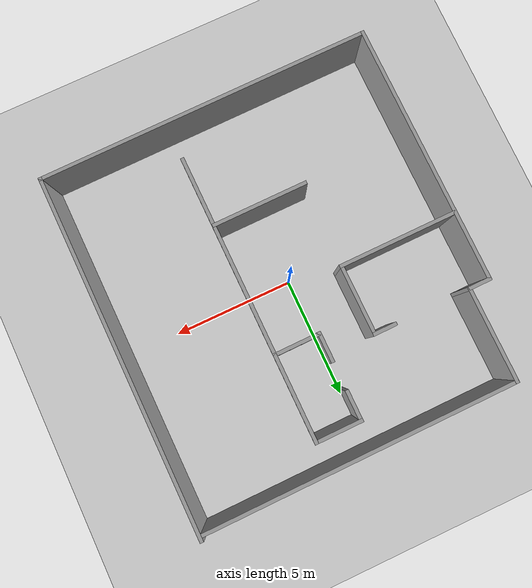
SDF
<sdf version="1.7">
 <world name="default">
  <light name="sun" type="directional">
   <pose>0 0 10 0 -0 0</pose>
   <diffuse>0.8 0.8 0.8 1</diffuse>
   <specular>0.2 0.2 0.2 1</specular>
   <attenuation>
    <range>1000</range>
    <constant>0.9</constant>
    <linear>0.01</linear>
    <quadratic>0.001</quadratic>
   </attenuation>
   <direction>-0.5 0.1 -0.9</direction>
   <spot><inner_angle>0</inner_angle><outer_angle>0</outer_angle><falloff>0</falloff></spot>
  </light>
  <model name="ground_plane">
   <static>1</static>
   <link name="link">
    <collision name="collision">
     <geometry><plane><normal>0 0 1</normal><size>100 100</size></plane></geometry>
     <surface>
      <contact><collide_bitmask>65535</collide_bitmask></contact>
      <friction><ode><mu>100</mu><mu2>50</mu2></ode></friction>
     </surface>
    </collision>
    <visual name="visual">
     <cast_shadows>0</cast_shadows>
     <geometry><plane><normal>0 0 1</normal><size>100 100</size></plane></geometry>
     <material>
      <script><uri>file://media/materials/scripts/gazebo.material</uri><name>Gazebo/Grey</name></script>
     </material>
    </visual>
   </link>
  </model>
  <gravity>0 0 -9.8</gravity>
  <magnetic_field>6e-06 2.3e-05 -4.2e-05</magnetic_field>
  <atmosphere type="adiabatic"/>
  <physics type="ode">
   <max_step_size>0.001</max_step_size>
   <real_time_factor>1</real_time_factor>
   <real_time_update_rate>1000</real_time_update_rate>
  </physics>
  <scene><ambient>0.4 0.4 0.4 1</ambient><background>0.7 0.7 0.7 1</background><shadows>1</shadows></scene>
  <spherical_coordinates>
   <surface_model>EARTH_WGS84</surface_model>
   <latitude_deg>0</latitude_deg>
   <longitude_deg>0</longitude_deg>
   <elevation>0</elevation>
   <heading_deg>0</heading_deg>
  </spherical_coordinates>
  <model name="house">
   <link name="Wall_10">
    <pose>-3.425 -6.5 0 0 -0 1.5708</pose>
    <visual name="Wall_10_Visual">
     <pose>0 0 1.25 0 -0 0</pose>
     <geometry><box><size>1 0.15 2.5</size></box></geometry>
     <material>
      <script><uri>file://media/materials/scripts/gazebo.material</uri><name>Gazebo/Grey</name></script>
      <ambient>1 1 1 1</ambient>
      <shader type="pixel"/>
     </material>
     <meta><layer>0</layer></meta>
    </visual>
    <collision name="Wall_10_Collision">
     <pose>0 0 1.25 0 -0 0</pose>
     <geometry><box><size>1 0.15 2.5</size></box></geometry>
     <surface>
      <friction>
       <ode><mu>1</mu><mu2>1</mu2><fdir1>0 0 0</fdir1><slip1>0</slip1><slip2>0</slip2></ode>
       <torsional>
        <coefficient>1</coefficient>
        <patch_radius>0</patch_radius>
        <surface_radius>0</surface_radius>
        <use_patch_radius>1</use_patch_radius>
        <ode><slip>0</slip></ode>
       </torsional>
      </friction>
      <bounce><restitution_coefficient>0</restitution_coefficient><threshold>1e+06</threshold></bounce>
      <contact>
       <collide_without_contact>0</collide_without_contact>
       <collide_without_contact_bitmask>1</collide_without_contact_bitmask>
       <collide_bitmask>1</collide_bitmask>
       <ode>
        <soft_cfm>0</soft_cfm>
        <soft_erp>0.2</soft_erp>
        <kp>1e+13</kp>
        <kd>1</kd>
        <max_vel>0.01</max_vel>
        <min_depth>0</min_depth>
       </ode>
       <bullet>
        <split_impulse>1</split_impulse>
        <split_impulse_penetration_threshold>-0.01</split_impulse_penetration_threshold>
        <soft_cfm>0</soft_cfm>
        <soft_erp>0.2</soft_erp>
        <kp>1e+13</kp>
        <kd>1</kd>
       </bullet>
      </contact>
     </surface>
    </collision>
   </link>
   <link name="Wall_11">
    <pose>-5.35 -6.075 0 0 -0 3.14159</pose>
    <visual name="Wall_11_Visual">
     <pose>0 0 1.25 0 -0 0</pose>
     <geometry><box><size>4 0.15 2.5</size></box></geometry>
     <material>
      <script><uri>file://media/materials/scripts/gazebo.material</uri><name>Gazebo/Grey</name></script>
      <ambient>1 1 1 1</ambient>
      <shader type="pixel"/>
     </material>
     <meta><layer>0</layer></meta>
    </visual>
    <collision name="Wall_11_Collision">
     <pose>0 0 1.25 0 -0 0</pose>
     <geometry><box><size>4 0.15 2.5</size></box></geometry>
     <surface>
      <friction>
       <ode><mu>1</mu><mu2>1</mu2><fdir1>0 0 0</fdir1><slip1>0</slip1><slip2>0</slip2></ode>
       <torsional>
        <coefficient>1</coefficient>
        <patch_radius>0</patch_radius>
        <surface_radius>0</surface_radius>
        <use_patch_radius>1</use_patch_radius>
        <ode><slip>0</slip></ode>
       </torsional>
      </friction>
      <bounce><restitution_coefficient>0</restitution_coefficient><threshold>1e+06</threshold></bounce>
      <contact>
       <collide_without_contact>0</collide_without_contact>
       <collide_without_contact_bitmask>1</collide_without_contact_bitmask>
       <collide_bitmask>1</collide_bitmask>
       <ode>
        <soft_cfm>0</soft_cfm>
        <soft_erp>0.2</soft_erp>
        <kp>1e+13</kp>
        <kd>1</kd>
        <max_vel>0.01</max_vel>
        <min_depth>0</min_depth>
       </ode>
       <bullet>
        <split_impulse>1</split_impulse>
        <split_impulse_penetration_threshold>-0.01</split_impulse_penetration_threshold>
        <soft_cfm>0</soft_cfm>
        <soft_erp>0.2</soft_erp>
        <kp>1e+13</kp>
        <kd>1</kd>
       </bullet>
      </contact>
     </surface>
    </collision>
   </link>
   <link name="Wall_12">
    <pose>-7.275 0.35 0 0 -0 1.5708</pose>
    <visual name="Wall_12_Visual">
     <pose>0 0 1.25 0 -0 0</pose>
     <geometry><box><size>13 0.15 2.5</size></box></geometry>
     <material>
      <script><uri>file://media/materials/scripts/gazebo.material</uri><name>Gazebo/Grey</name></script>
      <ambient>1 1 1 1</ambient>
      <shader type="pixel"/>
     </material>
     <meta><layer>0</layer></meta>
    </visual>
    <collision name="Wall_12_Collision">
     <pose>0 0 1.25 0 -0 0</pose>
     <geometry><box><size>13 0.15 2.5</size></box></geometry>
     <surface>
      <friction>
       <ode><mu>1</mu><mu2>1</mu2><fdir1>0 0 0</fdir1><slip1>0</slip1><slip2>0</slip2></ode>
       <torsional>
        <coefficient>1</coefficient>
        <patch_radius>0</patch_radius>
        <surface_radius>0</surface_radius>
        <use_patch_radius>1</use_patch_radius>
        <ode><slip>0</slip></ode>
       </torsional>
      </friction>
      <bounce><restitution_coefficient>0</restitution_coefficient><threshold>1e+06</threshold></bounce>
      <contact>
       <collide_without_contact>0</collide_without_contact>
       <collide_without_contact_bitmask>1</collide_without_contact_bitmask>
       <collide_bitmask>1</collide_bitmask>
       <ode>
        <soft_cfm>0</soft_cfm>
        <soft_erp>0.2</soft_erp>
        <kp>1e+13</kp>
        <kd>1</kd>
        <max_vel>0.01</max_vel>
        <min_depth>0</min_depth>
       </ode>
       <bullet>
        <split_impulse>1</split_impulse>
        <split_impulse_penetration_threshold>-0.01</split_impulse_penetration_threshold>
        <soft_cfm>0</soft_cfm>
        <soft_erp>0.2</soft_erp>
        <kp>1e+13</kp>
        <kd>1</kd>
       </bullet>
      </contact>
     </surface>
    </collision>
   </link>
   <link name="Wall_15">
    <pose>-0.575 -4.5 0 0 -0 1.5708</pose>
    <visual name="Wall_15_Visual">
     <pose>0 0 1.25 0 -0 0</pose>
     <geometry><box><size>5 0.15 2.5</size></box></geometry>
     <material>
      <script><uri>file://media/materials/scripts/gazebo.material</uri><name>Gazebo/Grey</name></script>
      <ambient>1 1 1 1</ambient>
      <shader type="pixel"/>
     </material>
     <meta><layer>0</layer></meta>
    </visual>
    <collision name="Wall_15_Collision">
     <pose>0 0 1.25 0 -0 0</pose>
     <geometry><box><size>5 0.15 2.5</size></box></geometry>
     <surface>
      <friction>
       <ode><mu>1</mu><mu2>1</mu2><fdir1>0 0 0</fdir1><slip1>0</slip1><slip2>0</slip2></ode>
       <torsional>
        <coefficient>1</coefficient>
        <patch_radius>0</patch_radius>
        <surface_radius>0</surface_radius>
        <use_patch_radius>1</use_patch_radius>
        <ode><slip>0</slip></ode>
       </torsional>
      </friction>
      <bounce><restitution_coefficient>0</restitution_coefficient><threshold>1e+06</threshold></bounce>
      <contact>
       <collide_without_contact>0</collide_without_contact>
       <collide_without_contact_bitmask>1</collide_without_contact_bitmask>
       <collide_bitmask>1</collide_bitmask>
       <ode>
        <soft_cfm>0</soft_cfm>
        <soft_erp>0.2</soft_erp>
        <kp>1e+13</kp>
        <kd>1</kd>
        <max_vel>0.01</max_vel>
        <min_depth>0</min_depth>
       </ode>
       <bullet>
        <split_impulse>1</split_impulse>
        <split_impulse_penetration_threshold>-0.01</split_impulse_penetration_threshold>
        <soft_cfm>0</soft_cfm>
        <soft_erp>0.2</soft_erp>
        <kp>1e+13</kp>
        <kd>1</kd>
       </bullet>
      </contact>
     </surface>
    </collision>
   </link>
   <link name="Wall_18">
    <pose>-2 -2.075 0 0 -0 3.14159</pose>
    <visual name="Wall_18_Visual">
     <pose>0 0 1.25 0 -0 0</pose>
     <geometry><box><size>3 0.15 2.5</size></box></geometry>
     <material>
      <script><uri>file://media/materials/scripts/gazebo.material</uri><name>Gazebo/Grey</name></script>
      <ambient>1 1 1 1</ambient>
      <shader type="pixel"/>
     </material>
     <meta><layer>0</layer></meta>
    </visual>
    <collision name="Wall_18_Collision">
     <pose>0 0 1.25 0 -0 0</pose>
     <geometry><box><size>3 0.15 2.5</size></box></geometry>
     <surface>
      <friction>
       <ode><mu>1</mu><mu2>1</mu2><fdir1>0 0 0</fdir1><slip1>0</slip1><slip2>0</slip2></ode>
       <torsional>
        <coefficient>1</coefficient>
        <patch_radius>0</patch_radius>
        <surface_radius>0</surface_radius>
        <use_patch_radius>1</use_patch_radius>
        <ode><slip>0</slip></ode>
       </torsional>
      </friction>
      <bounce><restitution_coefficient>0</restitution_coefficient><threshold>1e+06</threshold></bounce>
      <contact>
       <collide_without_contact>0</collide_without_contact>
       <collide_without_contact_bitmask>1</collide_without_contact_bitmask>
       <collide_bitmask>1</collide_bitmask>
       <ode>
        <soft_cfm>0</soft_cfm>
        <soft_erp>0.2</soft_erp>
        <kp>1e+13</kp>
        <kd>1</kd>
        <max_vel>0.01</max_vel>
        <min_depth>0</min_depth>
       </ode>
       <bullet>
        <split_impulse>1</split_impulse>
        <split_impulse_penetration_threshold>-0.01</split_impulse_penetration_threshold>
        <soft_cfm>0</soft_cfm>
        <soft_erp>0.2</soft_erp>
        <kp>1e+13</kp>
        <kd>1</kd>
       </bullet>
      </contact>
     </surface>
    </collision>
   </link>
   <link name="Wall_19">
    <pose>-3.425 -2.5 0 0 0 -1.5708</pose>
    <visual name="Wall_19_Visual">
     <pose>0 0 1.25 0 -0 0</pose>
     <geometry><box><size>1 0.15 2.5</size></box></geometry>
     <material>
      <script><uri>file://media/materials/scripts/gazebo.material</uri><name>Gazebo/Grey</name></script>
      <ambient>1 1 1 1</ambient>
      <shader type="pixel"/>
     </material>
     <meta><layer>0</layer></meta>
    </visual>
    <collision name="Wall_19_Collision">
     <pose>0 0 1.25 0 -0 0</pose>
     <geometry><box><size>1 0.15 2.5</size></box></geometry>
     <surface>
      <friction>
       <ode><mu>1</mu><mu2>1</mu2><fdir1>0 0 0</fdir1><slip1>0</slip1><slip2>0</slip2></ode>
       <torsional>
        <coefficient>1</coefficient>
        <patch_radius>0</patch_radius>
        <surface_radius>0</surface_radius>
        <use_patch_radius>1</use_patch_radius>
        <ode><slip>0</slip></ode>
       </torsional>
      </friction>
      <bounce><restitution_coefficient>0</restitution_coefficient><threshold>1e+06</threshold></bounce>
      <contact>
       <collide_without_contact>0</collide_without_contact>
       <collide_without_contact_bitmask>1</collide_without_contact_bitmask>
       <collide_bitmask>1</collide_bitmask>
       <ode>
        <soft_cfm>0</soft_cfm>
        <soft_erp>0.2</soft_erp>
        <kp>1e+13</kp>
        <kd>1</kd>
        <max_vel>0.01</max_vel>
        <min_depth>0</min_depth>
       </ode>
       <bullet>
        <split_impulse>1</split_impulse>
        <split_impulse_penetration_threshold>-0.01</split_impulse_penetration_threshold>
        <soft_cfm>0</soft_cfm>
        <soft_erp>0.2</soft_erp>
        <kp>1e+13</kp>
        <kd>1</kd>
       </bullet>
      </contact>
     </surface>
    </collision>
   </link>
   <link name="Wall_2">
    <pose>0 6.925 0 0 -0 0</pose>
    <visual name="Wall_2_Visual">
     <pose>0 0 1.25 0 -0 0</pose>
     <geometry><box><size>15 0.15 2.5</size></box></geometry>
     <material>
      <script><uri>file://media/materials/scripts/gazebo.material</uri><name>Gazebo/Grey</name></script>
      <ambient>1 1 1 1</ambient>
      <shader type="pixel"/>
     </material>
     <meta><layer>0</layer></meta>
    </visual>
    <collision name="Wall_2_Collision">
     <pose>0 0 1.25 0 -0 0</pose>
     <geometry><box><size>15 0.15 2.5</size></box></geometry>
     <surface>
      <friction>
       <ode><mu>1</mu><mu2>1</mu2><fdir1>0 0 0</fdir1><slip1>0</slip1><slip2>0</slip2></ode>
       <torsional>
        <coefficient>1</coefficient>
        <patch_radius>0</patch_radius>
        <surface_radius>0</surface_radius>
        <use_patch_radius>1</use_patch_radius>
        <ode><slip>0</slip></ode>
       </torsional>
      </friction>
      <bounce><restitution_coefficient>0</restitution_coefficient><threshold>1e+06</threshold></bounce>
      <contact>
       <collide_without_contact>0</collide_without_contact>
       <collide_without_contact_bitmask>1</collide_without_contact_bitmask>
       <collide_bitmask>1</collide_bitmask>
       <ode>
        <soft_cfm>0</soft_cfm>
        <soft_erp>0.2</soft_erp>
        <kp>1e+13</kp>
        <kd>1</kd>
        <max_vel>0.01</max_vel>
        <min_depth>0</min_depth>
       </ode>
       <bullet>
        <split_impulse>1</split_impulse>
        <split_impulse_penetration_threshold>-0.01</split_impulse_penetration_threshold>
        <soft_cfm>0</soft_cfm>
        <soft_erp>0.2</soft_erp>
        <kp>1e+13</kp>
        <kd>1</kd>
       </bullet>
      </contact>
     </surface>
    </collision>
   </link>
   <link name="Wall_23">
    <pose>-0.153566 1.64603 0 0 -0 0</pose>
    <visual name="Wall_23_Visual">
     <pose>0 0 1.25 0 -0 0</pose>
     <geometry><box><size>12 0.15 2.5</size></box></geometry>
     <material>
      <script><uri>file://media/materials/scripts/gazebo.material</uri><name>Gazebo/Grey</name></script>
      <ambient>1 1 1 1</ambient>
      <shader type="pixel"/>
     </material>
     <meta><layer>0</layer></meta>
    </visual>
    <collision name="Wall_23_Collision">
     <pose>0 0 1.25 0 -0 0</pose>
     <geometry><box><size>12 0.15 2.5</size></box></geometry>
     <surface>
      <friction>
       <ode><mu>1</mu><mu2>1</mu2><fdir1>0 0 0</fdir1><slip1>0</slip1><slip2>0</slip2></ode>
       <torsional>
        <coefficient>1</coefficient>
        <patch_radius>0</patch_radius>
        <surface_radius>0</surface_radius>
        <use_patch_radius>1</use_patch_radius>
        <ode><slip>0</slip></ode>
       </torsional>
      </friction>
      <bounce><restitution_coefficient>0</restitution_coefficient><threshold>1e+06</threshold></bounce>
      <contact>
       <collide_without_contact>0</collide_without_contact>
       <collide_without_contact_bitmask>1</collide_without_contact_bitmask>
       <collide_bitmask>1</collide_bitmask>
       <ode>
        <soft_cfm>0</soft_cfm>
        <soft_erp>0.2</soft_erp>
        <kp>1e+13</kp>
        <kd>1</kd>
        <max_vel>0.01</max_vel>
        <min_depth>0</min_depth>
       </ode>
       <bullet>
        <split_impulse>1</split_impulse>
        <split_impulse_penetration_threshold>-0.01</split_impulse_penetration_threshold>
        <soft_cfm>0</soft_cfm>
        <soft_erp>0.2</soft_erp>
        <kp>1e+13</kp>
        <kd>1</kd>
       </bullet>
      </contact>
     </surface>
    </collision>
   </link>
   <link name="Wall_40">
    <pose>-6.07857 0.721033 0 0 0 -1.5708</pose>
    <visual name="Wall_40_Visual">
     <pose>0 0 1.25 0 -0 0</pose>
     <geometry><box><size>2 0.15 2.5</size></box></geometry>
     <material>
      <script><uri>file://media/materials/scripts/gazebo.material</uri><name>Gazebo/Grey</name></script>
      <ambient>1 1 1 1</ambient>
      <shader type="pixel"/>
     </material>
     <meta><layer>0</layer></meta>
    </visual>
    <collision name="Wall_40_Collision">
     <pose>0 0 1.25 0 -0 0</pose>
     <geometry><box><size>2 0.15 2.5</size></box></geometry>
     <surface>
      <friction>
       <ode><mu>1</mu><mu2>1</mu2><fdir1>0 0 0</fdir1><slip1>0</slip1><slip2>0</slip2></ode>
       <torsional>
        <coefficient>1</coefficient>
        <patch_radius>0</patch_radius>
        <surface_radius>0</surface_radius>
        <use_patch_radius>1</use_patch_radius>
        <ode><slip>0</slip></ode>
       </torsional>
      </friction>
      <bounce><restitution_coefficient>0</restitution_coefficient><threshold>1e+06</threshold></bounce>
      <contact>
       <collide_without_contact>0</collide_without_contact>
       <collide_without_contact_bitmask>1</collide_without_contact_bitmask>
       <collide_bitmask>1</collide_bitmask>
       <ode>
        <soft_cfm>0</soft_cfm>
        <soft_erp>0.2</soft_erp>
        <kp>1e+13</kp>
        <kd>1</kd>
        <max_vel>0.01</max_vel>
        <min_depth>0</min_depth>
       </ode>
       <bullet>
        <split_impulse>1</split_impulse>
        <split_impulse_penetration_threshold>-0.01</split_impulse_penetration_threshold>
        <soft_cfm>0</soft_cfm>
        <soft_erp>0.2</soft_erp>
        <kp>1e+13</kp>
        <kd>1</kd>
       </bullet>
      </contact>
     </surface>
    </collision>
   </link>
   <link name="Wall_41">
    <pose>-5.49268 -0.203965 0 0 -0 0</pose>
    <inertial>
     <mass>0.87493</mass>
     <inertia>
      <ixx>0.457333</ixx>
      <ixy>0</ixy>
      <ixz>0</ixz>
      <iyy>0.581274</iyy>
      <iyz>0</iyz>
      <izz>0.127222</izz>
     </inertia>
    </inertial>
    <visual name="Wall_41_Visual">
     <pose>0 0 1.25 0 -0 0</pose>
     <geometry><box><size>1.3124 0.15 2.5</size></box></geometry>
     <material>
      <script><uri>file://media/materials/scripts/gazebo.material</uri><name>Gazebo/Grey</name></script>
      <ambient>1 1 1 1</ambient>
      <shader type="pixel"><normal_map>__default__</normal_map></shader>
     </material>
     <meta><layer>0</layer></meta>
    </visual>
    <collision name="Wall_41_Collision">
     <pose>0 0 1.25 0 -0 0</pose>
     <geometry><box><size>1.3124 0.15 2.5</size></box></geometry>
     <surface>
      <friction>
       <ode><mu>1</mu><mu2>1</mu2><fdir1>0 0 0</fdir1><slip1>0</slip1><slip2>0</slip2></ode>
       <torsional>
        <coefficient>1</coefficient>
        <patch_radius>0</patch_radius>
        <surface_radius>0</surface_radius>
        <use_patch_radius>1</use_patch_radius>
        <ode><slip>0</slip></ode>
       </torsional>
      </friction>
      <bounce><restitution_coefficient>0</restitution_coefficient><threshold>1e+06</threshold></bounce>
      <contact>
       <collide_without_contact>0</collide_without_contact>
       <collide_without_contact_bitmask>1</collide_without_contact_bitmask>
       <collide_bitmask>1</collide_bitmask>
       <ode>
        <soft_cfm>0</soft_cfm>
        <soft_erp>0.2</soft_erp>
        <kp>1e+13</kp>
        <kd>1</kd>
        <max_vel>0.01</max_vel>
        <min_depth>0</min_depth>
       </ode>
       <bullet>
        <split_impulse>1</split_impulse>
        <split_impulse_penetration_threshold>-0.01</split_impulse_penetration_threshold>
        <soft_cfm>0</soft_cfm>
        <soft_erp>0.2</soft_erp>
        <kp>1e+13</kp>
        <kd>1</kd>
       </bullet>
      </contact>
     </surface>
    </collision>
   </link>
   <link name="Wall_41_clone">
    <pose>-3.08285 -0.203735 0 0 -0 0</pose>
    <inertial>
     <inertia><ixx>0</ixx><ixy>0</ixy><ixz>0</ixz><iyy>0</iyy><iyz>0</iyz><izz>0</izz></inertia>
     <mass>0</mass>
    </inertial>
    <visual name="Wall_41_Visual">
     <pose>0 0 1.25 0 -0 0</pose>
     <geometry><box><size>1.27027 0.15 2.5</size></box></geometry>
     <material>
      <script><uri>file://media/materials/scripts/gazebo.material</uri><name>Gazebo/Grey</name></script>
      <ambient>1 1 1 1</ambient>
      <shader type="pixel"><normal_map>__default__</normal_map></shader>
      <diffuse>0.7 0.7 0.7 1</diffuse>
      <specular>0.01 0.01 0.01 1</specular>
      <emissive>0 0 0 1</emissive>
     </material>
     <meta><layer>0</layer></meta>
    </visual>
    <collision name="Wall_41_Collision">
     <pose>0 0 1.25 0 -0 0</pose>
     <geometry><box><size>1.27027 0.15 2.5</size></box></geometry>
     <surface>
      <friction>
       <ode><mu>1</mu><mu2>1</mu2><fdir1>0 0 0</fdir1><slip1>0</slip1><slip2>0</slip2></ode>
       <torsional>
        <coefficient>1</coefficient>
        <patch_radius>0</patch_radius>
        <surface_radius>0</surface_radius>
        <use_patch_radius>1</use_patch_radius>
        <ode><slip>0</slip></ode>
       </torsional>
      </friction>
      <bounce><restitution_coefficient>0</restitution_coefficient><threshold>1e+06</threshold></bounce>
      <contact>
       <collide_without_contact>0</collide_without_contact>
       <collide_without_contact_bitmask>1</collide_without_contact_bitmask>
       <collide_bitmask>1</collide_bitmask>
       <ode>
        <soft_cfm>0</soft_cfm>
        <soft_erp>0.2</soft_erp>
        <kp>1e+13</kp>
        <kd>1</kd>
        <max_vel>0.01</max_vel>
        <min_depth>0</min_depth>
       </ode>
       <bullet>
        <split_impulse>1</split_impulse>
        <split_impulse_penetration_threshold>-0.01</split_impulse_penetration_threshold>
        <soft_cfm>0</soft_cfm>
        <soft_erp>0.2</soft_erp>
        <kp>1e+13</kp>
        <kd>1</kd>
       </bullet>
      </contact>
     </surface>
    </collision>
   </link>
   <link name="Wall_45">
    <pose>-2.52857 0.721034 0 0 -0 1.5708</pose>
    <visual name="Wall_45_Visual">
     <pose>0 0 1.25 0 -0 0</pose>
     <geometry><box><size>2.00005 0.15 2.5</size></box></geometry>
     <material>
      <script><uri>file://media/materials/scripts/gazebo.material</uri><name>Gazebo/Grey</name></script>
      <ambient>1 1 1 1</ambient>
      <shader type="pixel"/>
     </material>
     <meta><layer>0</layer></meta>
    </visual>
    <collision name="Wall_45_Collision">
     <pose>0 0 1.25 0 -0 0</pose>
     <geometry><box><size>2.00005 0.15 2.5</size></box></geometry>
     <surface>
      <friction>
       <ode><mu>1</mu><mu2>1</mu2><fdir1>0 0 0</fdir1><slip1>0</slip1><slip2>0</slip2></ode>
       <torsional>
        <coefficient>1</coefficient>
        <patch_radius>0</patch_radius>
        <surface_radius>0</surface_radius>
        <use_patch_radius>1</use_patch_radius>
        <ode><slip>0</slip></ode>
       </torsional>
      </friction>
      <bounce><restitution_coefficient>0</restitution_coefficient><threshold>1e+06</threshold></bounce>
      <contact>
       <collide_without_contact>0</collide_without_contact>
       <collide_without_contact_bitmask>1</collide_without_contact_bitmask>
       <collide_bitmask>1</collide_bitmask>
       <ode>
        <soft_cfm>0</soft_cfm>
        <soft_erp>0.2</soft_erp>
        <kp>1e+13</kp>
        <kd>1</kd>
        <max_vel>0.01</max_vel>
        <min_depth>0</min_depth>
       </ode>
       <bullet>
        <split_impulse>1</split_impulse>
        <split_impulse_penetration_threshold>-0.01</split_impulse_penetration_threshold>
        <soft_cfm>0</soft_cfm>
        <soft_erp>0.2</soft_erp>
        <kp>1e+13</kp>
        <kd>1</kd>
       </bullet>
      </contact>
     </surface>
    </collision>
   </link>
   <link name="Wall_51">
    <pose>2.92143 -0.296456 0 0 0 -1.5708</pose>
    <visual name="Wall_51_Visual">
     <pose>0 0 1.25 0 -0 0</pose>
     <geometry><box><size>4 0.15 2.5</size></box></geometry>
     <material>
      <script><uri>file://media/materials/scripts/gazebo.material</uri><name>Gazebo/Grey</name></script>
      <ambient>1 1 1 1</ambient>
      <shader type="pixel"/>
     </material>
     <meta><layer>0</layer></meta>
    </visual>
    <collision name="Wall_51_Collision">
     <pose>0 0 1.25 0 -0 0</pose>
     <geometry><box><size>4 0.15 2.5</size></box></geometry>
     <surface>
      <friction>
       <ode><mu>1</mu><mu2>1</mu2><fdir1>0 0 0</fdir1><slip1>0</slip1><slip2>0</slip2></ode>
       <torsional>
        <coefficient>1</coefficient>
        <patch_radius>0</patch_radius>
        <surface_radius>0</surface_radius>
        <use_patch_radius>1</use_patch_radius>
        <ode><slip>0</slip></ode>
       </torsional>
      </friction>
      <bounce><restitution_coefficient>0</restitution_coefficient><threshold>1e+06</threshold></bounce>
      <contact>
       <collide_without_contact>0</collide_without_contact>
       <collide_without_contact_bitmask>1</collide_without_contact_bitmask>
       <collide_bitmask>1</collide_bitmask>
       <ode>
        <soft_cfm>0</soft_cfm>
        <soft_erp>0.2</soft_erp>
        <kp>1e+13</kp>
        <kd>1</kd>
        <max_vel>0.01</max_vel>
        <min_depth>0</min_depth>
       </ode>
       <bullet>
        <split_impulse>1</split_impulse>
        <split_impulse_penetration_threshold>-0.01</split_impulse_penetration_threshold>
        <soft_cfm>0</soft_cfm>
        <soft_erp>0.2</soft_erp>
        <kp>1e+13</kp>
        <kd>1</kd>
       </bullet>
      </contact>
     </surface>
    </collision>
   </link>
   <link name="Wall_6">
    <pose>7.425 -0 0 0 0 -1.5708</pose>
    <visual name="Wall_6_Visual">
     <pose>0 0 1.25 0 -0 0</pose>
     <geometry><box><size>14 0.15 2.5</size></box></geometry>
     <material>
      <script><uri>file://media/materials/scripts/gazebo.material</uri><name>Gazebo/Grey</name></script>
      <ambient>1 1 1 1</ambient>
      <shader type="pixel"/>
     </material>
     <meta><layer>0</layer></meta>
    </visual>
    <collision name="Wall_6_Collision">
     <pose>0 0 1.25 0 -0 0</pose>
     <geometry><box><size>14 0.15 2.5</size></box></geometry>
     <surface>
      <friction>
       <ode><mu>1</mu><mu2>1</mu2><fdir1>0 0 0</fdir1><slip1>0</slip1><slip2>0</slip2></ode>
       <torsional>
        <coefficient>1</coefficient>
        <patch_radius>0</patch_radius>
        <surface_radius>0</surface_radius>
        <use_patch_radius>1</use_patch_radius>
        <ode><slip>0</slip></ode>
       </torsional>
      </friction>
      <bounce><restitution_coefficient>0</restitution_coefficient><threshold>1e+06</threshold></bounce>
      <contact>
       <collide_without_contact>0</collide_without_contact>
       <collide_without_contact_bitmask>1</collide_without_contact_bitmask>
       <collide_bitmask>1</collide_bitmask>
       <ode>
        <soft_cfm>0</soft_cfm>
        <soft_erp>0.2</soft_erp>
        <kp>1e+13</kp>
        <kd>1</kd>
        <max_vel>0.01</max_vel>
        <min_depth>0</min_depth>
       </ode>
       <bullet>
        <split_impulse>1</split_impulse>
        <split_impulse_penetration_threshold>-0.01</split_impulse_penetration_threshold>
        <soft_cfm>0</soft_cfm>
        <soft_erp>0.2</soft_erp>
        <kp>1e+13</kp>
        <kd>1</kd>
       </bullet>
      </contact>
     </surface>
    </collision>
   </link>
   <link name="Wall_8">
    <pose>2 -6.925 0 0 -0 3.14159</pose>
    <visual name="Wall_8_Visual">
     <pose>0 0 1.25 0 -0 0</pose>
     <geometry><box><size>11 0.15 2.5</size></box></geometry>
     <material>
      <script><uri>file://media/materials/scripts/gazebo.material</uri><name>Gazebo/Grey</name></script>
      <ambient>1 1 1 1</ambient>
      <shader type="pixel"/>
     </material>
     <meta><layer>0</layer></meta>
    </visual>
    <collision name="Wall_8_Collision">
     <pose>0 0 1.25 0 -0 0</pose>
     <geometry><box><size>11 0.15 2.5</size></box></geometry>
     <surface>
      <friction>
       <ode><mu>1</mu><mu2>1</mu2><fdir1>0 0 0</fdir1><slip1>0</slip1><slip2>0</slip2></ode>
       <torsional>
        <coefficient>1</coefficient>
        <patch_radius>0</patch_radius>
        <surface_radius>0</surface_radius>
        <use_patch_radius>1</use_patch_radius>
        <ode><slip>0</slip></ode>
       </torsional>
      </friction>
      <bounce><restitution_coefficient>0</restitution_coefficient><threshold>1e+06</threshold></bounce>
      <contact>
       <collide_without_contact>0</collide_without_contact>
       <collide_without_contact_bitmask>1</collide_without_contact_bitmask>
       <collide_bitmask>1</collide_bitmask>
       <ode>
        <soft_cfm>0</soft_cfm>
        <soft_erp>0.2</soft_erp>
        <kp>1e+13</kp>
        <kd>1</kd>
        <max_vel>0.01</max_vel>
        <min_depth>0</min_depth>
       </ode>
       <bullet>
        <split_impulse>1</split_impulse>
        <split_impulse_penetration_threshold>-0.01</split_impulse_penetration_threshold>
        <soft_cfm>0</soft_cfm>
        <soft_erp>0.2</soft_erp>
        <kp>1e+13</kp>
        <kd>1</kd>
       </bullet>
      </contact>
     </surface>
    </collision>
   </link>
   <static>1</static>
   <pose>0.145403 -0.063883 0 0 0 -1.56279</pose>
  </model>
 </world>
</sdf>
